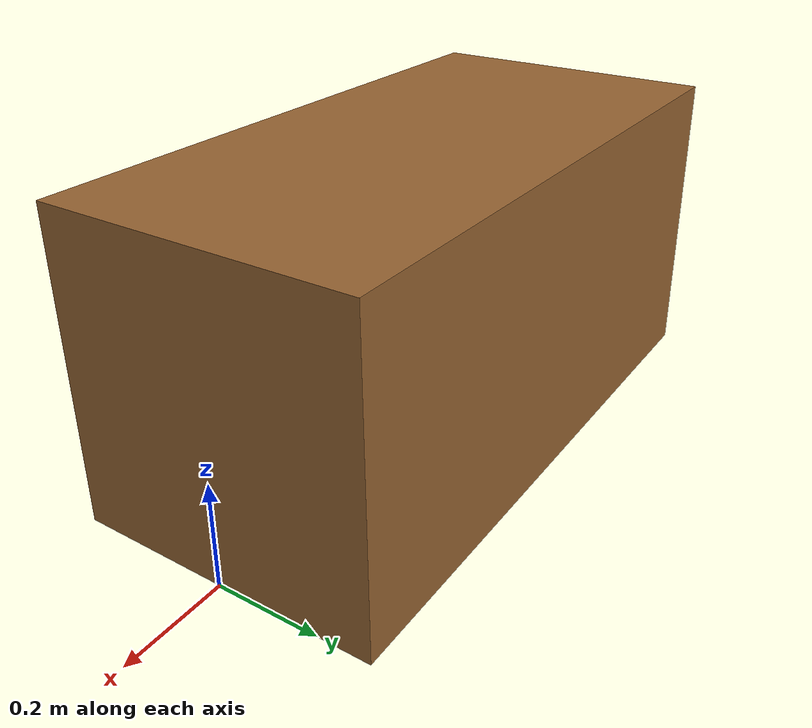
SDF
<?xml version="1.0" ?>
<sdf version="1.6">
  <model name="simple_table">
    <static>true</static>
    <link name="link">
      <collision name="collision">
        <pose>-0.6 0 0.3 0 0 0</pose>
        <geometry><box><size>1.2 0.6 0.6</size></box></geometry>
      </collision>
      <visual name="visual">
        <pose>-0.6 0 0.3 0 0 0</pose>
        <geometry><box><size>1.2 0.6 0.6</size></box></geometry>
        <material><ambient>0.6 0.4 0.2 1.0</ambient></material>
      </visual>
    </link>
  </model>
</sdf>
